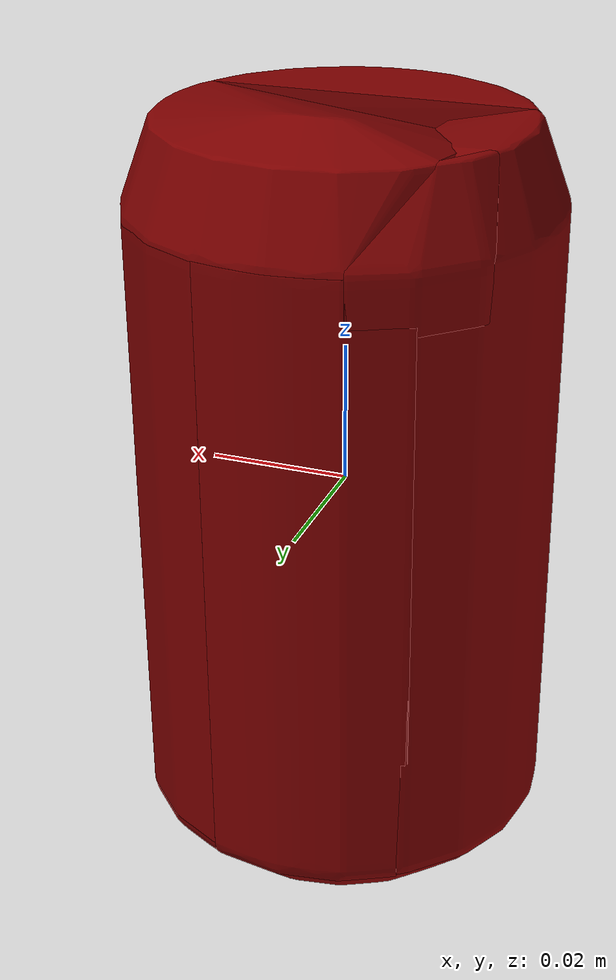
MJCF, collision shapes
<mujoco model="can_2">
  <asset>
    <mesh file="visual/model_normalized_0.obj" name="model_normalized_0_vis" scale="0.11 0.11 0.11" refquat="1.0 0.0 0.0 0.0"/>
    <mesh file="visual/model_normalized_1.obj" name="model_normalized_1_vis" scale="0.11 0.11 0.11" refquat="1.0 0.0 0.0 0.0"/>
    <mesh file="visual/model_normalized_2.obj" name="model_normalized_2_vis" scale="0.11 0.11 0.11" refquat="1.0 0.0 0.0 0.0"/>
    <mesh file="visual/model_normalized_3.obj" name="model_normalized_3_vis" scale="0.11 0.11 0.11" refquat="1.0 0.0 0.0 0.0"/>
    <mesh file="visual/model_normalized_4.obj" name="model_normalized_4_vis" scale="0.11 0.11 0.11" refquat="1.0 0.0 0.0 0.0"/>
    <mesh file="visual/model_normalized_5.obj" name="model_normalized_5_vis" scale="0.11 0.11 0.11" refquat="1.0 0.0 0.0 0.0"/>
    <mesh file="visual/model_normalized_6.obj" name="model_normalized_6_vis" scale="0.11 0.11 0.11" refquat="1.0 0.0 0.0 0.0"/>
    <texture type="2d" name="image0" file="visual/image0.png"/>
    <texture type="2d" name="image1" file="visual/image1.png"/>
    <material name="anisotropic1.001" texture="image0" specular="0.5" shininess="0.15999998099999999"/>
    <material name="anisotropic2.001" texture="image0" specular="0.5" shininess="0.15999998099999999"/>
    <material name="anisotropic3" texture="image0" specular="0.5" shininess="0.15999998099999999"/>
    <material name="anisotropic4" texture="image0" specular="0.5" shininess="0.15999998099999999"/>
    <material name="blinn5.001" texture="image1" specular="0.5" shininess="0.006280824"/>
    <material name="lambert1.061" texture="image0" specular="0.5" shininess="0.15999998099999999"/>
    <material name="lambert5.006" texture="image0" specular="0.5" shininess="0.15999998099999999"/>
    <mesh file="collision/collision_mesh_collision_0.obj" name="can_collision_mesh_0" scale="0.11 0.11 0.11" refquat="1.0 0.0 0.0 0.0"/>
    <mesh file="collision/collision_mesh_collision_1.obj" name="can_collision_mesh_1" scale="0.11 0.11 0.11" refquat="1.0 0.0 0.0 0.0"/>
    <mesh file="collision/collision_mesh_collision_2.obj" name="can_collision_mesh_2" scale="0.11 0.11 0.11" refquat="1.0 0.0 0.0 0.0"/>
    <mesh file="collision/collision_mesh_collision_3.obj" name="can_collision_mesh_3" scale="0.11 0.11 0.11" refquat="1.0 0.0 0.0 0.0"/>
    <mesh file="collision/collision_mesh_collision_4.obj" name="can_collision_mesh_4" scale="0.11 0.11 0.11" refquat="1.0 0.0 0.0 0.0"/>
    <mesh file="collision/collision_mesh_collision_5.obj" name="can_collision_mesh_5" scale="0.11 0.11 0.11" refquat="1.0 0.0 0.0 0.0"/>
    <mesh file="collision/collision_mesh_collision_6.obj" name="can_collision_mesh_6" scale="0.11 0.11 0.11" refquat="1.0 0.0 0.0 0.0"/>
    <mesh file="collision/collision_mesh_collision_7.obj" name="can_collision_mesh_7" scale="0.11 0.11 0.11" refquat="1.0 0.0 0.0 0.0"/>
    <mesh file="collision/collision_mesh_collision_8.obj" name="can_collision_mesh_8" scale="0.11 0.11 0.11" refquat="1.0 0.0 0.0 0.0"/>
    <mesh file="collision/collision_mesh_collision_9.obj" name="can_collision_mesh_9" scale="0.11 0.11 0.11" refquat="1.0 0.0 0.0 0.0"/>
    <mesh file="collision/collision_mesh_collision_10.obj" name="can_collision_mesh_10" scale="0.11 0.11 0.11" refquat="1.0 0.0 0.0 0.0"/>
    <mesh file="collision/collision_mesh_collision_11.obj" name="can_collision_mesh_11" scale="0.11 0.11 0.11" refquat="1.0 0.0 0.0 0.0"/>
    <mesh file="collision/collision_mesh_collision_12.obj" name="can_collision_mesh_12" scale="0.11 0.11 0.11" refquat="1.0 0.0 0.0 0.0"/>
    <mesh file="collision/collision_mesh_collision_13.obj" name="can_collision_mesh_13" scale="0.11 0.11 0.11" refquat="1.0 0.0 0.0 0.0"/>
    <mesh file="collision/collision_mesh_collision_14.obj" name="can_collision_mesh_14" scale="0.11 0.11 0.11" refquat="1.0 0.0 0.0 0.0"/>
    <mesh file="collision/collision_mesh_collision_15.obj" name="can_collision_mesh_15" scale="0.11 0.11 0.11" refquat="1.0 0.0 0.0 0.0"/>
  </asset>
  <default>
    <default class="region">
      <geom group="1" conaffinity="0" contype="0" rgba="0 1 0 0"/>
    </default>
    <default class="collision">
      <geom group="0" rgba="0.5 0 0 0.5" density="1000.0"/>
    </default>
  </default>
  <worldbody>
    <body>
      <body name="object">
        <geom solimp="0.998 0.998 0.001" solref="0.001 1" density="100" friction="0.95 0.3 0.1" type="mesh" mesh="model_normalized_0_vis" conaffinity="0" contype="0" group="1" material="anisotropic3"/>
        <geom solimp="0.998 0.998 0.001" solref="0.001 1" density="100" friction="0.95 0.3 0.1" type="mesh" mesh="model_normalized_1_vis" conaffinity="0" contype="0" group="1" material="lambert1.061"/>
        <geom solimp="0.998 0.998 0.001" solref="0.001 1" density="100" friction="0.95 0.3 0.1" type="mesh" mesh="model_normalized_2_vis" conaffinity="0" contype="0" group="1" material="lambert5.006"/>
        <geom solimp="0.998 0.998 0.001" solref="0.001 1" density="100" friction="0.95 0.3 0.1" type="mesh" mesh="model_normalized_3_vis" conaffinity="0" contype="0" group="1" material="anisotropic4"/>
        <geom solimp="0.998 0.998 0.001" solref="0.001 1" density="100" friction="0.95 0.3 0.1" type="mesh" mesh="model_normalized_4_vis" conaffinity="0" contype="0" group="1" material="anisotropic2.001"/>
        <geom solimp="0.998 0.998 0.001" solref="0.001 1" density="100" friction="0.95 0.3 0.1" type="mesh" mesh="model_normalized_5_vis" conaffinity="0" contype="0" group="1" material="blinn5.001"/>
        <geom solimp="0.998 0.998 0.001" solref="0.001 1" density="100" friction="0.95 0.3 0.1" type="mesh" mesh="model_normalized_6_vis" conaffinity="0" contype="0" group="1" material="anisotropic1.001"/>
        <geom class="region" name="reg_bbox" type="box" pos="1.28149999999716e-07 5.389999999910744e-08 -0.00011751849999999953" size="0.029346890650000006 0.0293468329 0.05548674230000001"/>
        <geom mesh="can_collision_mesh_0" type="mesh" class="collision"/>
        <geom mesh="can_collision_mesh_1" type="mesh" class="collision"/>
        <geom mesh="can_collision_mesh_2" type="mesh" class="collision"/>
        <geom mesh="can_collision_mesh_3" type="mesh" class="collision"/>
        <geom mesh="can_collision_mesh_4" type="mesh" class="collision"/>
        <geom mesh="can_collision_mesh_5" type="mesh" class="collision"/>
        <geom mesh="can_collision_mesh_6" type="mesh" class="collision"/>
        <geom mesh="can_collision_mesh_7" type="mesh" class="collision"/>
        <geom mesh="can_collision_mesh_8" type="mesh" class="collision"/>
        <geom mesh="can_collision_mesh_9" type="mesh" class="collision"/>
        <geom mesh="can_collision_mesh_10" type="mesh" class="collision"/>
        <geom mesh="can_collision_mesh_11" type="mesh" class="collision"/>
        <geom mesh="can_collision_mesh_12" type="mesh" class="collision"/>
        <geom mesh="can_collision_mesh_13" type="mesh" class="collision"/>
        <geom mesh="can_collision_mesh_14" type="mesh" class="collision"/>
        <geom mesh="can_collision_mesh_15" type="mesh" class="collision"/>
      </body>
    </body>
  </worldbody>
</mujoco>
